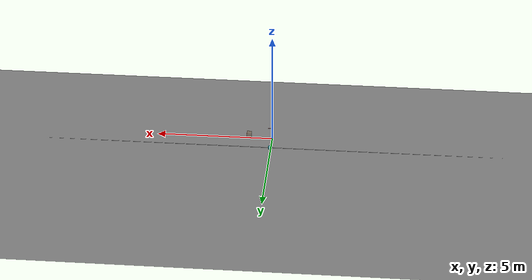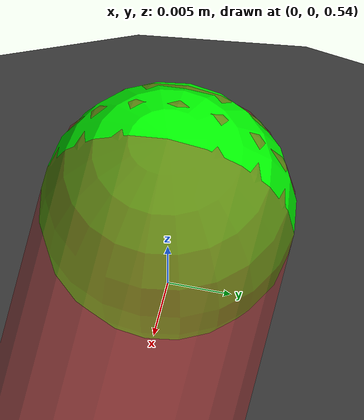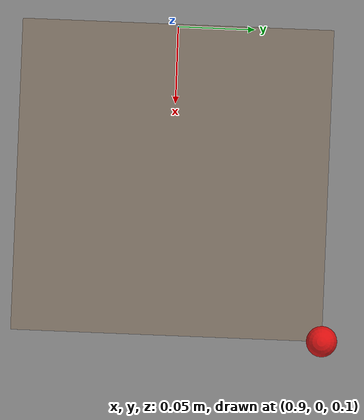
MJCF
<mujoco>
    <compiler angle="radian" meshdir="meshes" autolimits="true" />
    <!-- density="1.225" viscosity="1.8e-5" -->
    <option timestep="0.002" gravity="0 0 -9.81" integrator="implicitfast" />
    <asset>
        <mesh name="tetrahedron" vertex="0 0 0 1 0 0 0 1 0 0 0 1" />
        <texture type="skybox" file="../MJCF/asset/desert.png"
            gridsize="3 4" gridlayout=".U..LFRB.D.." />
        <texture name="plane" type="2d" builtin="checker" rgb1=".1 .1 .1" rgb2=".9 .9 .9"
            width="512" height="512" mark="cross" markrgb=".8 .8 .8" />
        <material name="plane" reflectance="0.3" texture="plane" texrepeat="1 1" texuniform="true" />
    </asset>

    <worldbody>
        <geom name="floor" pos="0 0 0" size="0 0 .25" type="plane" material="plane"
            condim="3" />
        <light directional="true" ambient=".3 .3 .3" pos="30 30 30" dir="0 -.5 -1"
            diffuse=".5 .5 .5" specular=".5 .5 .5" />

        <site type="ellipsoid" pos="0 1 0.2" size="10 0.01 0.01" rgba=".7 .7 .7 1" />
        <body name="sphere" pos="0 1 0.2">
            <joint name="lin_jnt" type="slide" axis="1 0 0" range="-10 10" damping="0.0"
                frictionloss="1.0" stiffness="1.0" />
            <geom type="sphere" mass="1" size="0.1" rgba=".2 .6 .6 1" />
        </body>

        <body name="base" pos="0 0 0">
            <geom type="cylinder" mass="100" size="0.05 0.5" rgba=".2 .2 .2 1" />
            <body name="pointer" pos="0 0 0.55">
                <joint type="hinge" name="pivot" axis="0 0 1" damping="0.0"
                    frictionloss="0.1" stiffness="1.0" />
                <site name="force_torque" size="0.01" rgba="0 1 0 1" />
                <geom type="capsule" mass="0.1" fromto="0 0 0 0.2 0 0" size="0.01"
                    rgba="0.8 0.2 0.2 0.5" />
            </body>
        </body>

        <body name="box" pos="1 0 0.2">
            <freejoint />
            <geom type="box" mass="1" size="0.1 0.1 0.1" rgba=".5 .4 .3 .5" />
            <site name="red_point" pos="0.1 0.1 0.1" rgba="1 0 0 .8" size="0.01"/>
        </body>
    </worldbody>

    <actuator>
        <motor name="lin_force" joint="lin_jnt" gear="1" />
        <motor name="motor" joint="pivot" gear="1" />
    </actuator>

    <sensor>
        <framelinacc name="lin_acc" objtype="body" objname="sphere" />
        <framelinvel name="lin_vel" objtype="body" objname="sphere" />
        <framepos name="lin_pos" objtype="body" objname="sphere" />
        <jointpos joint="pivot" name="pivot_pos"/>
        <jointvel joint="pivot" name="pivot_vel"/>
        <force name="force" site="force_torque" />
        <torque name="torque" site="force_torque" />
    </sensor>

</mujoco>
